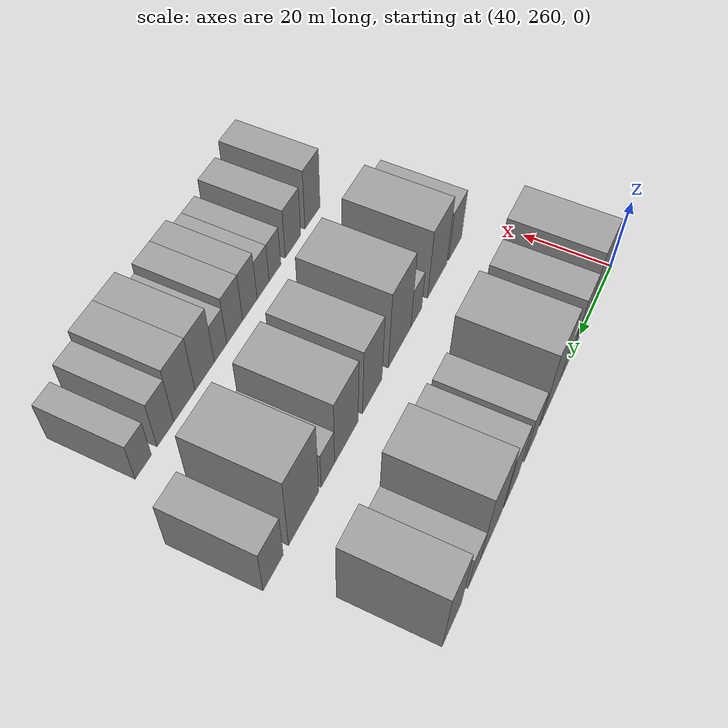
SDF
<sdf version="1.6">
 <world name="default">
  <model name="building_67">
   <static>1</static>
   <pose>50.0000 273.6361 0 0.000000 0.000000 0.000000</pose>
   <link name="link">
    <pose>0 0 12.00 0 0 0</pose>
    <collision name="collision"><geometry><box><size>20.0000 9.6837 24.0000</size></box></geometry></collision>
    <visual name="visual">
     <cast_shadows>0</cast_shadows>
     <geometry><box><size>20.0000 9.6837 24.0000</size></box></geometry>
     <material>
      <script>
       <uri>model://grey_wall/materials/scripts</uri>
       <uri>model://grey_wall/materials/textures</uri>
       <name>vrc/grey_wall</name>
      </script>
     </material>
    </visual>
   </link>
  </model>
  <model name="building_68">
   <static>1</static>
   <pose>50.0000 282.1421 0 0.000000 0.000000 0.000000</pose>
   <link name="link">
    <pose>0 0 9.00 0 0 0</pose>
    <collision name="collision"><geometry><box><size>20.0000 7.3284 18.0000</size></box></geometry></collision>
    <visual name="visual">
     <cast_shadows>0</cast_shadows>
     <geometry><box><size>20.0000 7.3284 18.0000</size></box></geometry>
     <material>
      <script>
       <uri>model://grey_wall/materials/scripts</uri>
       <uri>model://grey_wall/materials/textures</uri>
       <name>vrc/grey_wall</name>
      </script>
     </material>
    </visual>
   </link>
  </model>
  <model name="building_69">
   <static>1</static>
   <pose>50.0000 289.7700 0 0.000000 0.000000 0.000000</pose>
   <link name="link">
    <pose>0 0 6.00 0 0 0</pose>
    <collision name="collision"><geometry><box><size>20.0000 5.9274 12.0000</size></box></geometry></collision>
    <visual name="visual">
     <cast_shadows>0</cast_shadows>
     <geometry><box><size>20.0000 5.9274 12.0000</size></box></geometry>
     <material>
      <script>
       <uri>model://grey_wall/materials/scripts</uri>
       <uri>model://grey_wall/materials/textures</uri>
       <name>vrc/grey_wall</name>
      </script>
     </material>
    </visual>
   </link>
  </model>
  <model name="building_70">
   <static>1</static>
   <pose>50.0000 298.5270 0 0.000000 0.000000 0.000000</pose>
   <link name="link">
    <pose>0 0 12.00 0 0 0</pose>
    <collision name="collision"><geometry><box><size>20.0000 11.5866 24.0000</size></box></geometry></collision>
    <visual name="visual">
     <cast_shadows>0</cast_shadows>
     <geometry><box><size>20.0000 11.5866 24.0000</size></box></geometry>
     <material>
      <script>
       <uri>model://grey_wall/materials/scripts</uri>
       <uri>model://grey_wall/materials/textures</uri>
       <name>vrc/grey_wall</name>
      </script>
     </material>
    </visual>
   </link>
  </model>
  <model name="building_71">
   <static>1</static>
   <pose>50.0000 309.6688 0 0.000000 0.000000 0.000000</pose>
   <link name="link">
    <pose>0 0 7.50 0 0 0</pose>
    <collision name="collision"><geometry><box><size>20.0000 6.6970 15.0000</size></box></geometry></collision>
    <visual name="visual">
     <cast_shadows>0</cast_shadows>
     <geometry><box><size>20.0000 6.6970 15.0000</size></box></geometry>
     <material>
      <script>
       <uri>model://grey_wall/materials/scripts</uri>
       <uri>model://grey_wall/materials/textures</uri>
       <name>vrc/grey_wall</name>
      </script>
     </material>
    </visual>
   </link>
  </model>
  <model name="building_72">
   <static>1</static>
   <pose>50.0000 319.8242 0 0.000000 0.000000 0.000000</pose>
   <link name="link">
    <pose>0 0 9.00 0 0 0</pose>
    <collision name="collision"><geometry><box><size>20.0000 7.6137 18.0000</size></box></geometry></collision>
    <visual name="visual">
     <cast_shadows>0</cast_shadows>
     <geometry><box><size>20.0000 7.6137 18.0000</size></box></geometry>
     <material>
      <script>
       <uri>model://grey_wall/materials/scripts</uri>
       <uri>model://grey_wall/materials/textures</uri>
       <name>vrc/grey_wall</name>
      </script>
     </material>
    </visual>
   </link>
  </model>
  <model name="building_73">
   <static>1</static>
   <pose>50.0000 329.9711 0 0.000000 0.000000 0.000000</pose>
   <link name="link">
    <pose>0 0 12.00 0 0 0</pose>
    <collision name="collision"><geometry><box><size>20.0000 10.6802 24.0000</size></box></geometry></collision>
    <visual name="visual">
     <cast_shadows>0</cast_shadows>
     <geometry><box><size>20.0000 10.6802 24.0000</size></box></geometry>
     <material>
      <script>
       <uri>model://grey_wall/materials/scripts</uri>
       <uri>model://grey_wall/materials/textures</uri>
       <name>vrc/grey_wall</name>
      </script>
     </material>
    </visual>
   </link>
  </model>
  <model name="building_74">
   <static>1</static>
   <pose>50.0000 338.1468 0 0.000000 0.000000 0.000000</pose>
   <link name="link">
    <pose>0 0 6.00 0 0 0</pose>
    <collision name="collision"><geometry><box><size>20.0000 5.6712 12.0000</size></box></geometry></collision>
    <visual name="visual">
     <cast_shadows>0</cast_shadows>
     <geometry><box><size>20.0000 5.6712 12.0000</size></box></geometry>
     <material>
      <script>
       <uri>model://grey_wall/materials/scripts</uri>
       <uri>model://grey_wall/materials/textures</uri>
       <name>vrc/grey_wall</name>
      </script>
     </material>
    </visual>
   </link>
  </model>
  <model name="building_75">
   <static>1</static>
   <pose>50.0000 348.2405 0 0.000000 0.000000 0.000000</pose>
   <link name="link">
    <pose>0 0 10.50 0 0 0</pose>
    <collision name="collision"><geometry><box><size>20.0000 8.5162 21.0000</size></box></geometry></collision>
    <visual name="visual">
     <cast_shadows>0</cast_shadows>
     <geometry><box><size>20.0000 8.5162 21.0000</size></box></geometry>
     <material>
      <script>
       <uri>model://grey_wall/materials/scripts</uri>
       <uri>model://grey_wall/materials/textures</uri>
       <name>vrc/grey_wall</name>
      </script>
     </material>
    </visual>
   </link>
  </model>
  <model name="building_144">
   <static>1</static>
   <pose>82.0000 270.3151 0 0.000000 0.000000 0.000000</pose>
   <link name="link">
    <pose>0 0 7.50 0 0 0</pose>
    <collision name="collision"><geometry><box><size>20.0000 7.2616 15.0000</size></box></geometry></collision>
    <visual name="visual">
     <cast_shadows>0</cast_shadows>
     <geometry><box><size>20.0000 7.2616 15.0000</size></box></geometry>
     <material>
      <script>
       <uri>model://grey_wall/materials/scripts</uri>
       <uri>model://grey_wall/materials/textures</uri>
       <name>vrc/grey_wall</name>
      </script>
     </material>
    </visual>
   </link>
  </model>
  <model name="building_145">
   <static>1</static>
   <pose>82.0000 280.1358 0 0.000000 0.000000 0.000000</pose>
   <link name="link">
    <pose>0 0 10.50 0 0 0</pose>
    <collision name="collision"><geometry><box><size>20.0000 10.3798 21.0000</size></box></geometry></collision>
    <visual name="visual">
     <cast_shadows>0</cast_shadows>
     <geometry><box><size>20.0000 10.3798 21.0000</size></box></geometry>
     <material>
      <script>
       <uri>model://grey_wall/materials/scripts</uri>
       <uri>model://grey_wall/materials/textures</uri>
       <name>vrc/grey_wall</name>
      </script>
     </material>
    </visual>
   </link>
  </model>
  <model name="building_146">
   <static>1</static>
   <pose>82.0000 291.1173 0 0.000000 0.000000 0.000000</pose>
   <link name="link">
    <pose>0 0 6.00 0 0 0</pose>
    <collision name="collision"><geometry><box><size>20.0000 5.5832 12.0000</size></box></geometry></collision>
    <visual name="visual">
     <cast_shadows>0</cast_shadows>
     <geometry><box><size>20.0000 5.5832 12.0000</size></box></geometry>
     <material>
      <script>
       <uri>model://grey_wall/materials/scripts</uri>
       <uri>model://grey_wall/materials/textures</uri>
       <name>vrc/grey_wall</name>
      </script>
     </material>
    </visual>
   </link>
  </model>
  <model name="building_147">
   <static>1</static>
   <pose>82.0000 299.4503 0 0.000000 0.000000 0.000000</pose>
   <link name="link">
    <pose>0 0 12.00 0 0 0</pose>
    <collision name="collision"><geometry><box><size>20.0000 11.0827 24.0000</size></box></geometry></collision>
    <visual name="visual">
     <cast_shadows>0</cast_shadows>
     <geometry><box><size>20.0000 11.0827 24.0000</size></box></geometry>
     <material>
      <script>
       <uri>model://grey_wall/materials/scripts</uri>
       <uri>model://grey_wall/materials/textures</uri>
       <name>vrc/grey_wall</name>
      </script>
     </material>
    </visual>
   </link>
  </model>
  <model name="building_148">
   <static>1</static>
   <pose>82.0000 312.4679 0 0.000000 0.000000 0.000000</pose>
   <link name="link">
    <pose>0 0 10.50 0 0 0</pose>
    <collision name="collision"><geometry><box><size>20.0000 8.9526 21.0000</size></box></geometry></collision>
    <visual name="visual">
     <cast_shadows>0</cast_shadows>
     <geometry><box><size>20.0000 8.9526 21.0000</size></box></geometry>
     <material>
      <script>
       <uri>model://grey_wall/materials/scripts</uri>
       <uri>model://grey_wall/materials/textures</uri>
       <name>vrc/grey_wall</name>
      </script>
     </material>
    </visual>
   </link>
  </model>
  <model name="building_149">
   <static>1</static>
   <pose>82.0000 324.0565 0 0.000000 0.000000 0.000000</pose>
   <link name="link">
    <pose>0 0 10.50 0 0 0</pose>
    <collision name="collision"><geometry><box><size>20.0000 10.2247 21.0000</size></box></geometry></collision>
    <visual name="visual">
     <cast_shadows>0</cast_shadows>
     <geometry><box><size>20.0000 10.2247 21.0000</size></box></geometry>
     <material>
      <script>
       <uri>model://grey_wall/materials/scripts</uri>
       <uri>model://grey_wall/materials/textures</uri>
       <name>vrc/grey_wall</name>
      </script>
     </material>
    </visual>
   </link>
  </model>
  <model name="building_150">
   <static>1</static>
   <pose>82.0000 331.9608 0 0.000000 0.000000 0.000000</pose>
   <link name="link">
    <pose>0 0 6.00 0 0 0</pose>
    <collision name="collision"><geometry><box><size>20.0000 5.5839 12.0000</size></box></geometry></collision>
    <visual name="visual">
     <cast_shadows>0</cast_shadows>
     <geometry><box><size>20.0000 5.5839 12.0000</size></box></geometry>
     <material>
      <script>
       <uri>model://grey_wall/materials/scripts</uri>
       <uri>model://grey_wall/materials/textures</uri>
       <name>vrc/grey_wall</name>
      </script>
     </material>
    </visual>
   </link>
  </model>
  <model name="building_151">
   <static>1</static>
   <pose>82.0000 341.7068 0 0.000000 0.000000 0.000000</pose>
   <link name="link">
    <pose>0 0 12.00 0 0 0</pose>
    <collision name="collision"><geometry><box><size>20.0000 11.9080 24.0000</size></box></geometry></collision>
    <visual name="visual">
     <cast_shadows>0</cast_shadows>
     <geometry><box><size>20.0000 11.9080 24.0000</size></box></geometry>
     <material>
      <script>
       <uri>model://grey_wall/materials/scripts</uri>
       <uri>model://grey_wall/materials/textures</uri>
       <name>vrc/grey_wall</name>
      </script>
     </material>
    </visual>
   </link>
  </model>
  <model name="building_152">
   <static>1</static>
   <pose>82.0000 353.4043 0 0.000000 0.000000 0.000000</pose>
   <link name="link">
    <pose>0 0 7.50 0 0 0</pose>
    <collision name="collision"><geometry><box><size>20.0000 7.4869 15.0000</size></box></geometry></collision>
    <visual name="visual">
     <cast_shadows>0</cast_shadows>
     <geometry><box><size>20.0000 7.4869 15.0000</size></box></geometry>
     <material>
      <script>
       <uri>model://grey_wall/materials/scripts</uri>
       <uri>model://grey_wall/materials/textures</uri>
       <name>vrc/grey_wall</name>
      </script>
     </material>
    </visual>
   </link>
  </model>
  <model name="building_222">
   <static>1</static>
   <pose>114.0000 275.9357 0 0.000000 0.000000 0.000000</pose>
   <link name="link">
    <pose>0 0 9.00 0 0 0</pose>
    <collision name="collision"><geometry><box><size>20.0000 7.3279 18.0000</size></box></geometry></collision>
    <visual name="visual">
     <cast_shadows>0</cast_shadows>
     <geometry><box><size>20.0000 7.3279 18.0000</size></box></geometry>
     <material>
      <script>
       <uri>model://grey_wall/materials/scripts</uri>
       <uri>model://grey_wall/materials/textures</uri>
       <name>vrc/grey_wall</name>
      </script>
     </material>
    </visual>
   </link>
  </model>
  <model name="building_223">
   <static>1</static>
   <pose>114.0000 285.2197 0 0.000000 0.000000 0.000000</pose>
   <link name="link">
    <pose>0 0 7.50 0 0 0</pose>
    <collision name="collision"><geometry><box><size>20.0000 7.2400 15.0000</size></box></geometry></collision>
    <visual name="visual">
     <cast_shadows>0</cast_shadows>
     <geometry><box><size>20.0000 7.2400 15.0000</size></box></geometry>
     <material>
      <script>
       <uri>model://grey_wall/materials/scripts</uri>
       <uri>model://grey_wall/materials/textures</uri>
       <name>vrc/grey_wall</name>
      </script>
     </material>
    </visual>
   </link>
  </model>
  <model name="building_224">
   <static>1</static>
   <pose>114.0000 293.4949 0 0.000000 0.000000 0.000000</pose>
   <link name="link">
    <pose>0 0 6.00 0 0 0</pose>
    <collision name="collision"><geometry><box><size>20.0000 5.3105 12.0000</size></box></geometry></collision>
    <visual name="visual">
     <cast_shadows>0</cast_shadows>
     <geometry><box><size>20.0000 5.3105 12.0000</size></box></geometry>
     <material>
      <script>
       <uri>model://grey_wall/materials/scripts</uri>
       <uri>model://grey_wall/materials/textures</uri>
       <name>vrc/grey_wall</name>
      </script>
     </material>
    </visual>
   </link>
  </model>
  <model name="building_225">
   <static>1</static>
   <pose>114.0000 298.7646 0 0.000000 0.000000 0.000000</pose>
   <link name="link">
    <pose>0 0 6.00 0 0 0</pose>
    <collision name="collision"><geometry><box><size>20.0000 5.2288 12.0000</size></box></geometry></collision>
    <visual name="visual">
     <cast_shadows>0</cast_shadows>
     <geometry><box><size>20.0000 5.2288 12.0000</size></box></geometry>
     <material>
      <script>
       <uri>model://grey_wall/materials/scripts</uri>
       <uri>model://grey_wall/materials/textures</uri>
       <name>vrc/grey_wall</name>
      </script>
     </material>
    </visual>
   </link>
  </model>
  <model name="building_226">
   <static>1</static>
   <pose>114.0000 304.4701 0 0.000000 0.000000 0.000000</pose>
   <link name="link">
    <pose>0 0 7.50 0 0 0</pose>
    <collision name="collision"><geometry><box><size>20.0000 6.1822 15.0000</size></box></geometry></collision>
    <visual name="visual">
     <cast_shadows>0</cast_shadows>
     <geometry><box><size>20.0000 6.1822 15.0000</size></box></geometry>
     <material>
      <script>
       <uri>model://grey_wall/materials/scripts</uri>
       <uri>model://grey_wall/materials/textures</uri>
       <name>vrc/grey_wall</name>
      </script>
     </material>
    </visual>
   </link>
  </model>
  <model name="building_227">
   <static>1</static>
   <pose>114.0000 310.8526 0 0.000000 0.000000 0.000000</pose>
   <link name="link">
    <pose>0 0 7.50 0 0 0</pose>
    <collision name="collision"><geometry><box><size>20.0000 6.5828 15.0000</size></box></geometry></collision>
    <visual name="visual">
     <cast_shadows>0</cast_shadows>
     <geometry><box><size>20.0000 6.5828 15.0000</size></box></geometry>
     <material>
      <script>
       <uri>model://grey_wall/materials/scripts</uri>
       <uri>model://grey_wall/materials/textures</uri>
       <name>vrc/grey_wall</name>
      </script>
     </material>
    </visual>
   </link>
  </model>
  <model name="building_228">
   <static>1</static>
   <pose>114.0000 316.6651 0 0.000000 0.000000 0.000000</pose>
   <link name="link">
    <pose>0 0 6.00 0 0 0</pose>
    <collision name="collision"><geometry><box><size>20.0000 5.0422 12.0000</size></box></geometry></collision>
    <visual name="visual">
     <cast_shadows>0</cast_shadows>
     <geometry><box><size>20.0000 5.0422 12.0000</size></box></geometry>
     <material>
      <script>
       <uri>model://grey_wall/materials/scripts</uri>
       <uri>model://grey_wall/materials/textures</uri>
       <name>vrc/grey_wall</name>
      </script>
     </material>
    </visual>
   </link>
  </model>
  <model name="building_229">
   <static>1</static>
   <pose>114.0000 322.9648 0 0.000000 0.000000 0.000000</pose>
   <link name="link">
    <pose>0 0 9.00 0 0 0</pose>
    <collision name="collision"><geometry><box><size>20.0000 7.5573 18.0000</size></box></geometry></collision>
    <visual name="visual">
     <cast_shadows>0</cast_shadows>
     <geometry><box><size>20.0000 7.5573 18.0000</size></box></geometry>
     <material>
      <script>
       <uri>model://grey_wall/materials/scripts</uri>
       <uri>model://grey_wall/materials/textures</uri>
       <name>vrc/grey_wall</name>
      </script>
     </material>
    </visual>
   </link>
  </model>
  <model name="building_230">
   <static>1</static>
   <pose>114.0000 330.7410 0 0.000000 0.000000 0.000000</pose>
   <link name="link">
    <pose>0 0 9.00 0 0 0</pose>
    <collision name="collision"><geometry><box><size>20.0000 7.9949 18.0000</size></box></geometry></collision>
    <visual name="visual">
     <cast_shadows>0</cast_shadows>
     <geometry><box><size>20.0000 7.9949 18.0000</size></box></geometry>
     <material>
      <script>
       <uri>model://grey_wall/materials/scripts</uri>
       <uri>model://grey_wall/materials/textures</uri>
       <name>vrc/grey_wall</name>
      </script>
     </material>
    </visual>
   </link>
  </model>
  <model name="building_231">
   <static>1</static>
   <pose>114.0000 337.7787 0 0.000000 0.000000 0.000000</pose>
   <link name="link">
    <pose>0 0 7.50 0 0 0</pose>
    <collision name="collision"><geometry><box><size>20.0000 6.0805 15.0000</size></box></geometry></collision>
    <visual name="visual">
     <cast_shadows>0</cast_shadows>
     <geometry><box><size>20.0000 6.0805 15.0000</size></box></geometry>
     <material>
      <script>
       <uri>model://grey_wall/materials/scripts</uri>
       <uri>model://grey_wall/materials/textures</uri>
       <name>vrc/grey_wall</name>
      </script>
     </material>
    </visual>
   </link>
  </model>
  <model name="building_232">
   <static>1</static>
   <pose>114.0000 345.6649 0 0.000000 0.000000 0.000000</pose>
   <link name="link">
    <pose>0 0 6.00 0 0 0</pose>
    <collision name="collision"><geometry><box><size>20.0000 5.6919 12.0000</size></box></geometry></collision>
    <visual name="visual">
     <cast_shadows>0</cast_shadows>
     <geometry><box><size>20.0000 5.6919 12.0000</size></box></geometry>
     <material>
      <script>
       <uri>model://grey_wall/materials/scripts</uri>
       <uri>model://grey_wall/materials/textures</uri>
       <name>vrc/grey_wall</name>
      </script>
     </material>
    </visual>
   </link>
  </model>
 </world>
</sdf>
